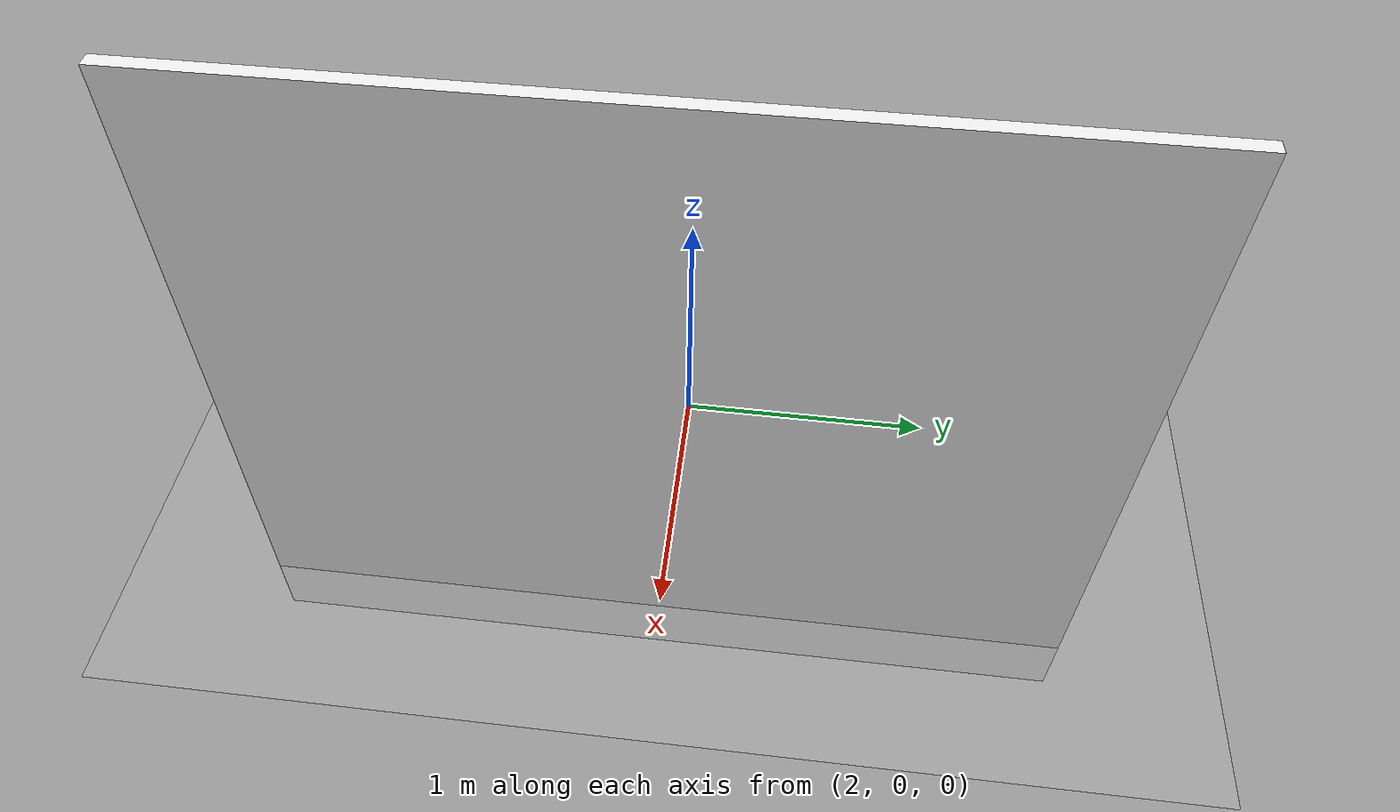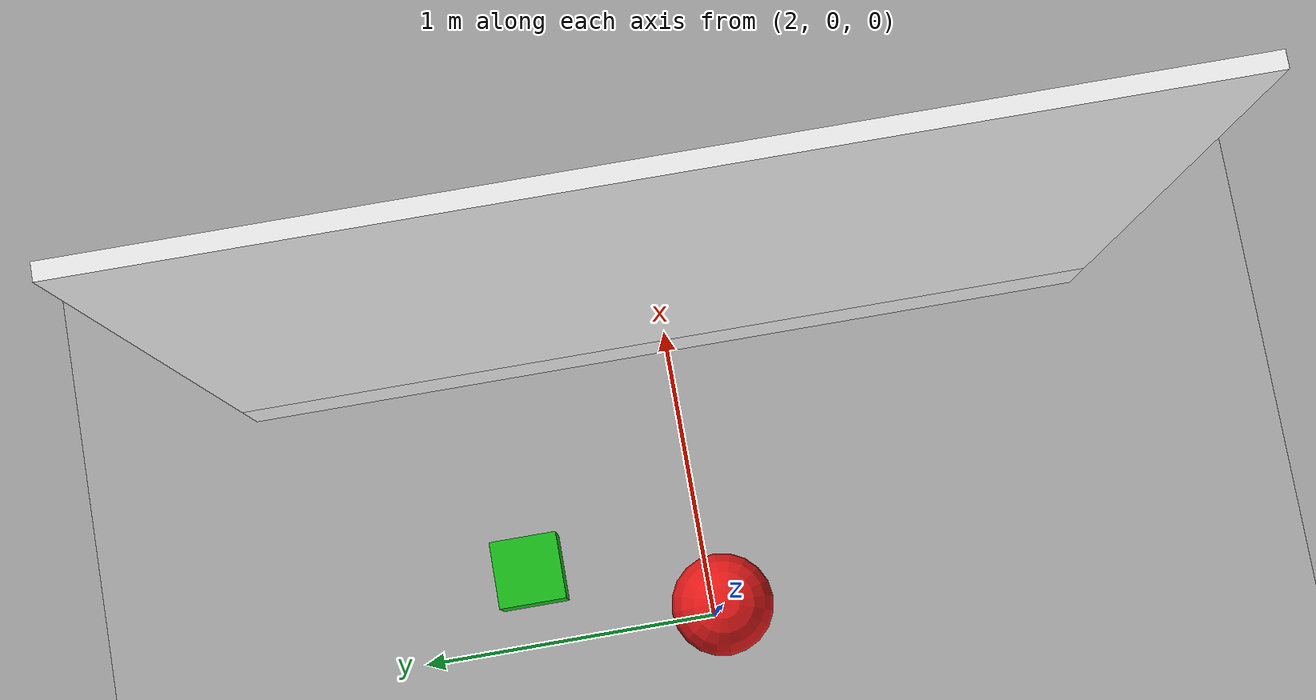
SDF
<?xml version="1.0"?>
<sdf version="1.6">
  <world name="lesson12_coordinate_transform_world">

    <physics type="ode">
      <max_step_size>0.001</max_step_size>
      <real_time_factor>1.0</real_time_factor>
      <real_time_update_rate>1000</real_time_update_rate>
      <gravity>0 0 0</gravity>
    </physics>

    <scene>
      <ambient>0.65 0.65 0.65 1.0</ambient>
      <background>0.82 0.88 0.95 1.0</background>
      <shadows>true</shadows>
    </scene>

    <light type="directional" name="sun">
      <cast_shadows>true</cast_shadows>
      <pose>0 0 10 0 0 0</pose>
      <diffuse>0.9 0.9 0.9 1</diffuse>
      <specular>0.3 0.3 0.3 1</specular>
      <direction>-0.5 0.1 -0.9</direction>
    </light>

    <model name="ground_plane">
      <static>true</static>
      <link name="link">
        <collision name="collision">
          <geometry>
            <plane><normal>0 0 1</normal><size>100 100</size></plane>
          </geometry>
        </collision>
        <visual name="visual">
          <cast_shadows>false</cast_shadows>
          <geometry>
            <plane><normal>0 0 1</normal><size>100 100</size></plane>
          </geometry>
          <material>
            <ambient>0.75 0.75 0.75 1</ambient>
            <diffuse>0.75 0.75 0.75 1</diffuse>
          </material>
        </visual>
      </link>
    </model>

    <!-- 第十二讲目标物：静态红球。用于相机截图、bbox 演示和 Gazebo 真值对比。 -->
    <model name="target_ball">
      <static>true</static>
      <pose>2.0 0.0 1.0 0 0 0</pose>
      <link name="link">
        <visual name="visual">
          <geometry><sphere><radius>0.15</radius></sphere></geometry>
          <material>
            <ambient>0.9 0.1 0.1 1</ambient>
            <diffuse>0.9 0.1 0.1 1</diffuse>
          </material>
        </visual>
      </link>
    </model>

    <model name="green_reference_box">
      <static>true</static>
      <pose>2.2 0.55 0.85 0 0 0</pose>
      <link name="link">
        <visual name="visual">
          <geometry><box><size>0.2 0.2 0.2</size></box></geometry>
          <material>
            <ambient>0.1 0.75 0.1 1</ambient>
            <diffuse>0.1 0.75 0.1 1</diffuse>
          </material>
        </visual>
      </link>
    </model>

    <model name="backdrop">
      <static>true</static>
      <pose>3.0 0 1.0 0 0 0</pose>
      <link name="link">
        <visual name="visual">
          <geometry><box><size>0.05 3.0 2.5</size></box></geometry>
          <material>
            <ambient>0.95 0.95 0.95 1</ambient>
            <diffuse>0.95 0.95 0.95 1</diffuse>
          </material>
        </visual>
      </link>
    </model>

  </world>
</sdf>
